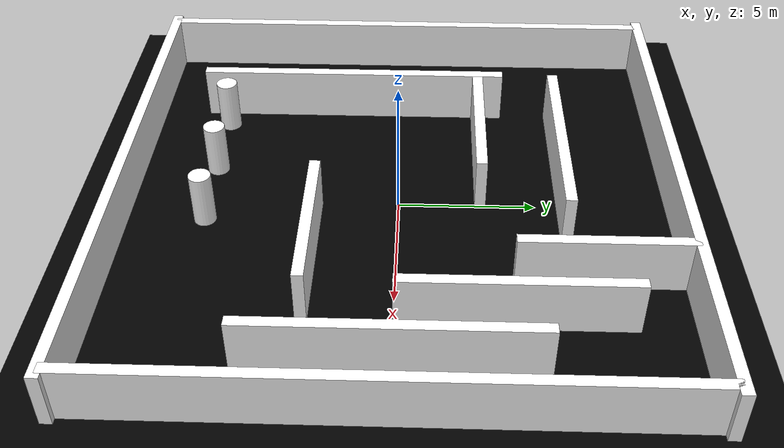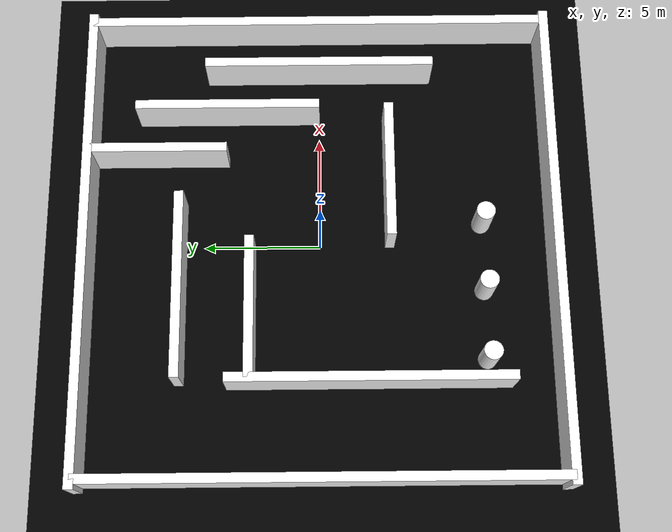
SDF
<?xml version="1.0" ?>
<sdf version="1.8">
  <world name="dark_maze_world">

    <physics name="default_physics" type="tpe">
      <max_step_size>0.001</max_step_size>
      <real_time_update_rate>1000</real_time_update_rate>
      <real_time_factor>1.0</real_time_factor>
    </physics>

    <scene>
      <ambient>0.4 0.4 0.4 1</ambient>
      <background>0.0 0.0 0.0 1</background> <shadows>false</shadows>
      <grid>true</grid>
    </scene>

    <light name="sun" type="directional">
      <pose>0 0 10 0 0 0</pose>
      <diffuse>1 1 1 1</diffuse>
      <specular>0.1 0.1 0.1 1</specular>
      <direction>0.1 0.1 -0.9</direction>
      <attenuation>
        <range>1000</range>
        <constant>0.9</constant>
        <linear>0.01</linear>
        <quadratic>0.001</quadratic>
      </attenuation>
    </light>

    <model name="ground_plane">
      <static>true</static>
      <link name="link">
        <collision name="collision">
          <geometry>
            <plane>
              <normal>0 0 1</normal>
              <size>30 30</size>
            </plane>
          </geometry>
        </collision>
        <visual name="visual">
          <geometry>
            <plane>
              <normal>0 0 1</normal>
              <size>30 30</size>
            </plane>
          </geometry>
          <material>
            <ambient>0 0 0 1</ambient>
            <diffuse>0 0 0 1</diffuse>
            <specular>0 0 0 0</specular>
          </material>
        </visual>
      </link>
    </model>

    <model name="complex_maze">
      <static>true</static>
      <link name="walls">
        <visual name="visual_outer_north">
          <pose>0 10 1 0 0 0</pose>
          <geometry><box><size>20.8 0.4 2</size></box></geometry>
          <material><ambient>1 1 1 1</ambient><diffuse>1 1 1 1</diffuse></material>
        </visual>
        <collision name="col_outer_north">
          <pose>0 10 1 0 0 0</pose>
          <geometry><box><size>20.8 0.4 2</size></box></geometry>
        </collision>

        <visual name="visual_outer_south">
          <pose>0 -10 1 0 0 0</pose>
          <geometry><box><size>20.8 0.4 2</size></box></geometry>
          <material><ambient>1 1 1 1</ambient><diffuse>1 1 1 1</diffuse></material>
        </visual>
        <collision name="col_outer_south">
          <pose>0 -10 1 0 0 0</pose>
          <geometry><box><size>20.8 0.4 2</size></box></geometry>
        </collision>

        <visual name="visual_outer_west">
          <pose>-10 0 1 0 0 0</pose>
          <geometry><box><size>0.4 20 2</size></box></geometry>
          <material><ambient>1 1 1 1</ambient><diffuse>1 1 1 1</diffuse></material>
        </visual>
        <collision name="col_outer_west">
          <pose>-10 0 1 0 0 0</pose>
          <geometry><box><size>0.4 20 2</size></box></geometry>
        </collision>

        <visual name="visual_outer_east">
          <pose>10 0 1 0 0 0</pose>
          <geometry><box><size>0.4 20 2</size></box></geometry>
          <material><ambient>1 1 1 1</ambient><diffuse>1 1 1 1</diffuse></material>
        </visual>
        <collision name="col_outer_east">
          <pose>10 0 1 0 0 0</pose>
          <geometry><box><size>0.4 20 2</size></box></geometry>
        </collision>

        <visual name="wall_inner_1">
          <pose>-3 3 1 0 0 0</pose>
          <geometry><box><size>6 0.4 2</size></box></geometry>
          <material><ambient>1 1 1 1</ambient><diffuse>1 1 1 1</diffuse></material>
        </visual>
        <collision name="col_inner_1">
          <pose>-3 3 1 0 0 0</pose>
          <geometry><box><size>6 0.4 2</size></box></geometry>
        </collision>

        <visual name="wall_inner_2">
          <pose>3 -3 1 0 0 0</pose>
          <geometry><box><size>6 0.4 2</size></box></geometry>
          <material><ambient>1 1 1 1</ambient><diffuse>1 1 1 1</diffuse></material>
        </visual>
        <collision name="col_inner_2">
          <pose>3 -3 1 0 0 0</pose>
          <geometry><box><size>6 0.4 2</size></box></geometry>
        </collision>

        <visual name="wall_zigzag_1">
          <pose>6 4 1 0 0 0</pose>
          <geometry><box><size>0.4 8 2</size></box></geometry>
          <material><ambient>1 1 1 1</ambient><diffuse>1 1 1 1</diffuse></material>
        </visual>
        <collision name="col_zigzag_1">
          <pose>6 4 1 0 0 0</pose>
          <geometry><box><size>0.4 8 2</size></box></geometry>
        </collision>

        <visual name="wall_zigzag_2">
          <pose>8 0 1 0 0 0</pose>
          <geometry><box><size>0.4 10 2</size></box></geometry>
          <material><ambient>1 1 1 1</ambient><diffuse>1 1 1 1</diffuse></material>
        </visual>
        <collision name="col_zigzag_2">
          <pose>8 0 1 0 0 0</pose>
          <geometry><box><size>0.4 10 2</size></box></geometry>
        </collision>

        <visual name="wall_long_1">
          <pose>-6 -2 1 0 0 0</pose>
          <geometry><box><size>0.4 12 2</size></box></geometry>
          <material><ambient>1 1 1 1</ambient><diffuse>1 1 1 1</diffuse></material>
        </visual>
        <collision name="col_long_1">
          <pose>-6 -2 1 0 0 0</pose>
          <geometry><box><size>0.4 12 2</size></box></geometry>
        </collision>

        <visual name="wall_cross_1">
          <pose>-2 6 1 0 0 0</pose>
          <geometry><box><size>8 0.4 2</size></box></geometry>
          <material><ambient>1 1 1 1</ambient><diffuse>1 1 1 1</diffuse></material>
        </visual>
        <collision name="col_cross_1">
          <pose>-2 6 1 0 0 0</pose>
          <geometry><box><size>8 0.4 2</size></box></geometry>
        </collision>

        <visual name="pillar_1">
          <pose>-5 -7 1 0 0 0</pose>
          <geometry><cylinder><radius>0.4</radius><length>2</length></cylinder></geometry>
          <material><ambient>1 1 1 1</ambient><diffuse>1 1 1 1</diffuse></material>
        </visual>
        <collision name="col_pillar_1">
          <pose>-5 -7 1 0 0 0</pose>
          <geometry><cylinder><radius>0.4</radius><length>2</length></cylinder></geometry>
        </collision>

        <visual name="pillar_2">
          <pose>-2 -7 1 0 0 0</pose>
          <geometry><cylinder><radius>0.4</radius><length>2</length></cylinder></geometry>
          <material><ambient>1 1 1 1</ambient><diffuse>1 1 1 1</diffuse></material>
        </visual>
        <collision name="col_pillar_2">
          <pose>-2 -7 1 0 0 0</pose>
          <geometry><cylinder><radius>0.4</radius><length>2</length></cylinder></geometry>
        </collision>

        <visual name="pillar_3">
          <pose>1 -7 1 0 0 0</pose>
          <geometry><cylinder><radius>0.4</radius><length>2</length></cylinder></geometry>
          <material><ambient>1 1 1 1</ambient><diffuse>1 1 1 1</diffuse></material>
        </visual>
        <collision name="col_pillar_3">
          <pose>1 -7 1 0 0 0</pose>
          <geometry><cylinder><radius>0.4</radius><length>2</length></cylinder></geometry>
        </collision>

        <visual name="trap_1">
          <pose>4 7 1 0 0 0</pose>
          <geometry><box><size>0.4 6 2</size></box></geometry>
          <material><ambient>1 1 1 1</ambient><diffuse>1 1 1 1</diffuse></material>
        </visual>
        <collision name="col_trap_1">
          <pose>4 7 1 0 0 0</pose>
          <geometry><box><size>0.4 6 2</size></box></geometry>
        </collision>

      </link>
    </model>
  </world>
</sdf>
